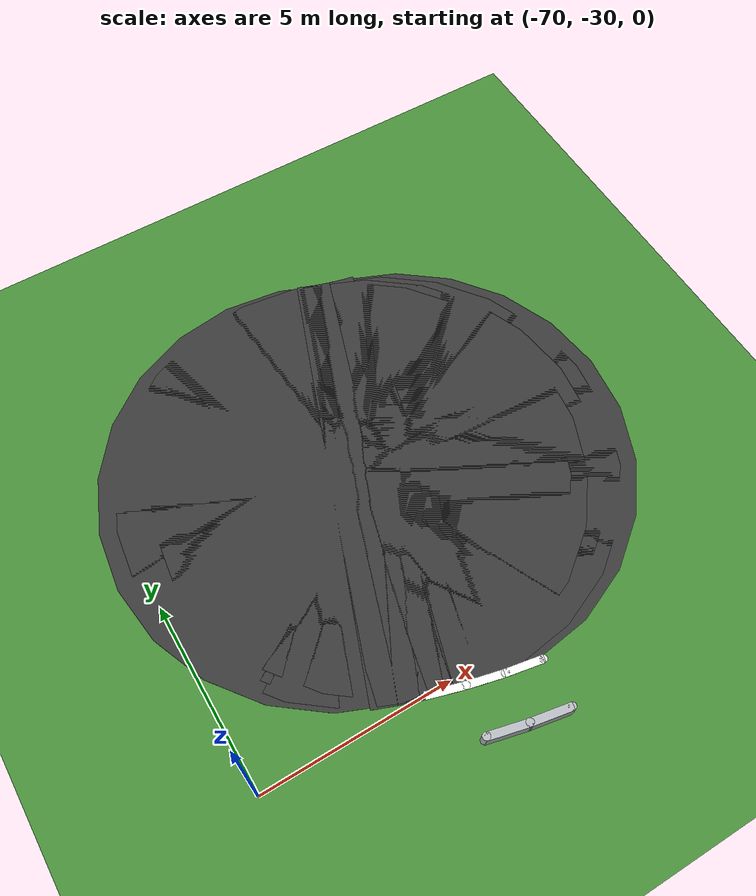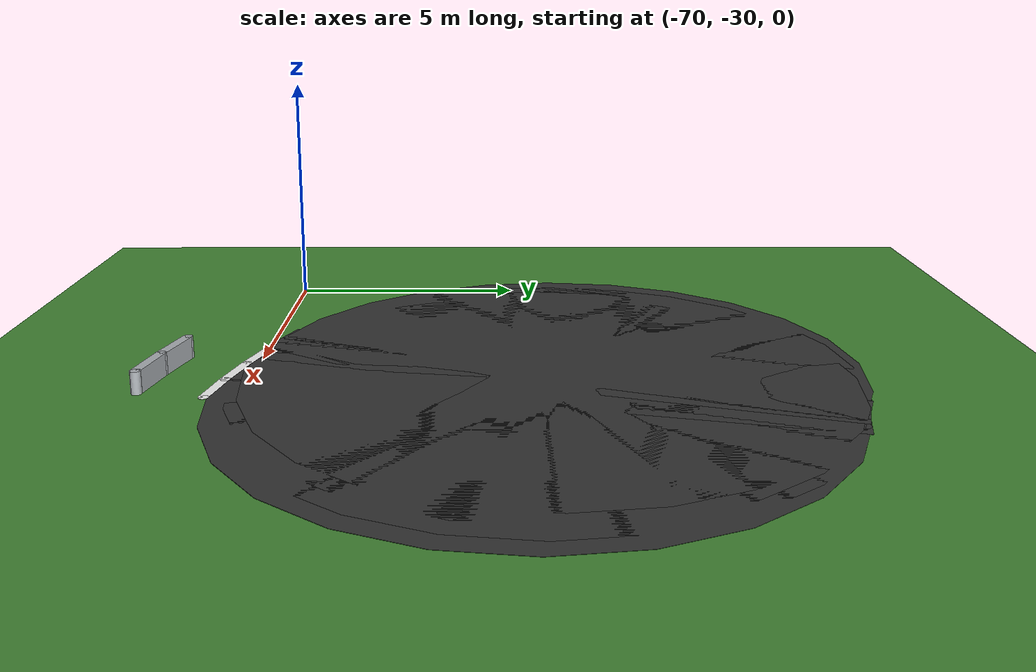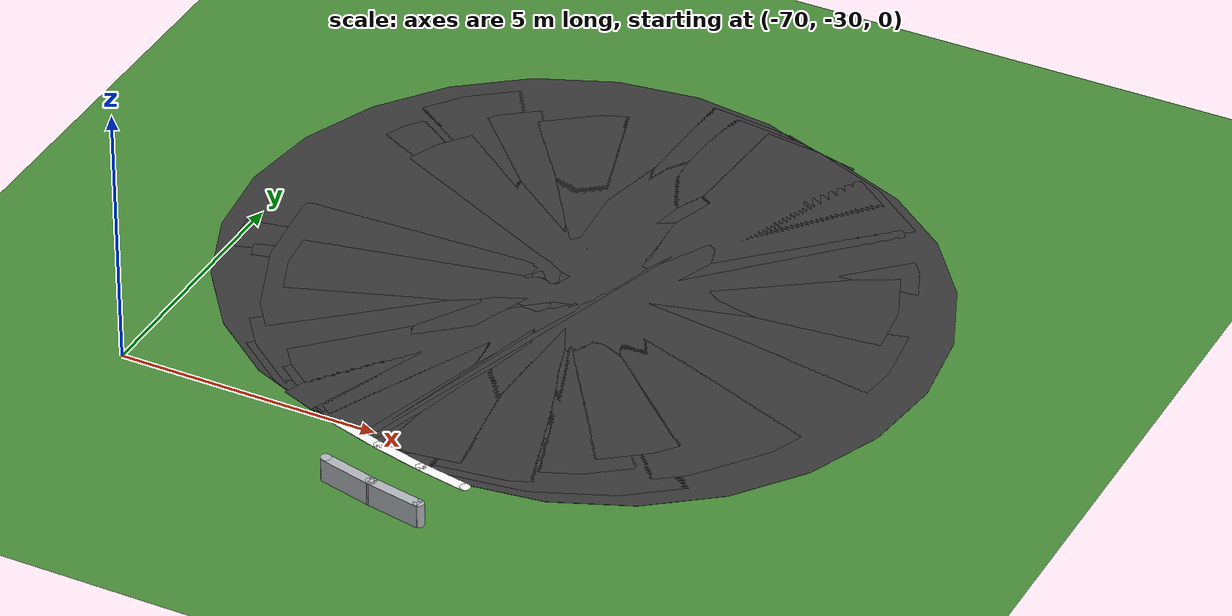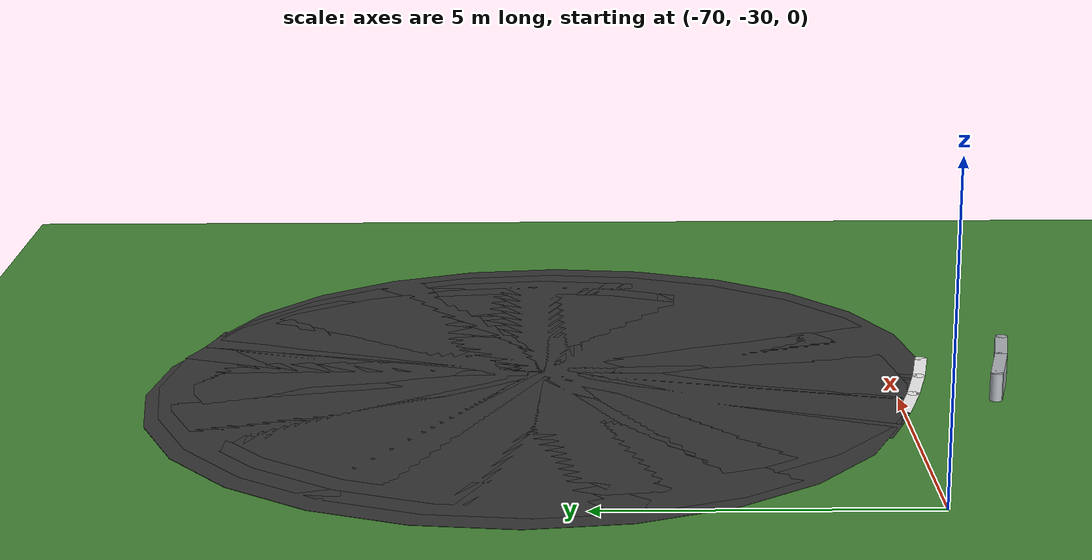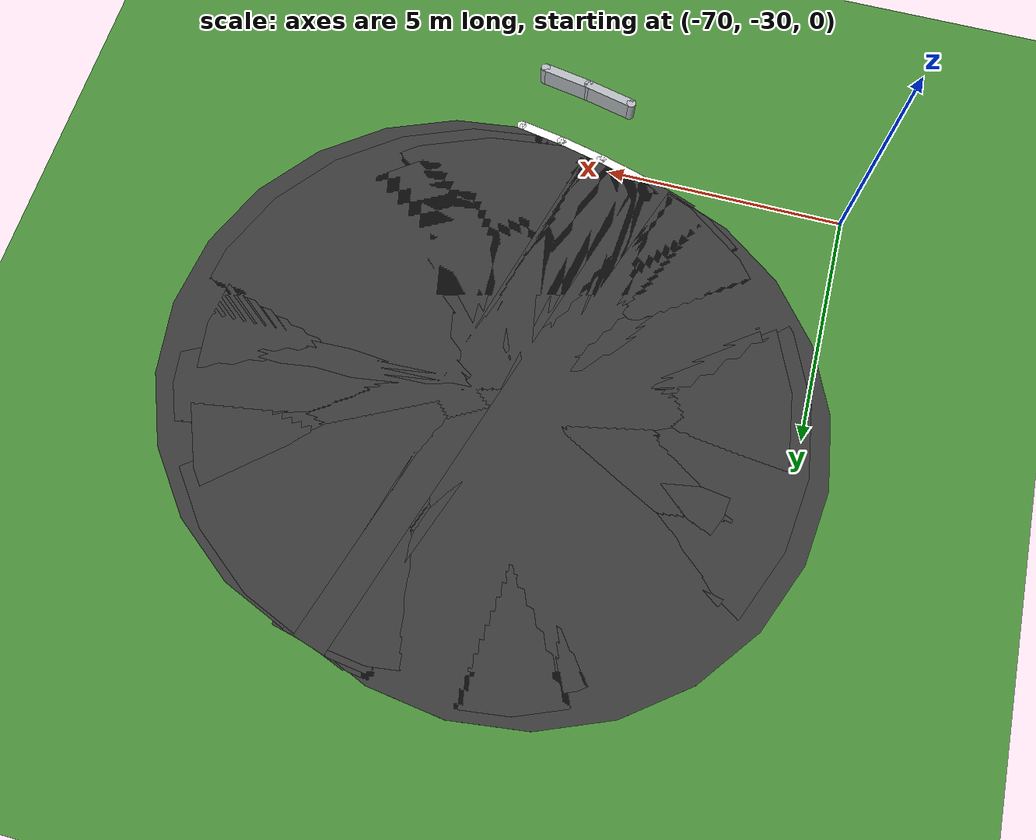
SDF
<sdf version="1.6">
 <world name="sem_silesia_ring_2026">
  <model name="ground_plane">
   <static>true</static>
   <link name="link">
    <collision name="collision">
     <geometry><plane><normal>0 0 1</normal><size>600 600</size></plane></geometry>
     <surface><friction><ode><mu>0.6</mu><mu2>0.6</mu2></ode></friction></surface>
    </collision>
    <visual name="visual">
     <geometry><plane><normal>0 0 1</normal><size>600 600</size></plane></geometry>
     <material><ambient>0.28 0.55 0.22 1</ambient><diffuse>0.28 0.55 0.22 1</diffuse></material>
    </visual>
   </link>
  </model>
  <model name="road_L_jnt79">
   <static>true</static>
   <pose>-64.6826 -24.0898 0.0030 0 0 0</pose>
   <link name="link">
    <visual name="v">
     <geometry><cylinder><radius>6.0000</radius><length>0.0060</length></cylinder></geometry>
     <material><ambient>0.22 0.22 0.22 1</ambient><diffuse>0.22 0.22 0.22 1</diffuse></material>
    </visual>
    <collision name="c">
     <geometry><cylinder><radius>6.0000</radius><length>0.0060</length></cylinder></geometry>
     <surface><friction><ode><mu>0.9</mu><mu2>0.9</mu2></ode></friction></surface>
    </collision>
   </link>
  </model>
  <model name="road_L_s79">
   <static>true</static>
   <pose>-64.4796 -24.1698 0.0030 0 0 5.9167</pose>
   <link name="link">
    <visual name="v">
     <geometry><box><size>0.6957 12.0000 0.0060</size></box></geometry>
     <material><ambient>0.22 0.22 0.22 1</ambient><diffuse>0.22 0.22 0.22 1</diffuse></material>
    </visual>
    <collision name="c">
     <geometry><box><size>0.6957 12.0000 0.0060</size></box></geometry>
     <surface><friction><ode><mu>0.9</mu><mu2>0.9</mu2></ode></friction></surface>
    </collision>
   </link>
  </model>
  <model name="road_L_jnt80">
   <static>true</static>
   <pose>-64.2753 -24.2462 0.0030 0 0 0</pose>
   <link name="link">
    <visual name="v">
     <geometry><cylinder><radius>6.0000</radius><length>0.0060</length></cylinder></geometry>
     <material><ambient>0.22 0.22 0.22 1</ambient><diffuse>0.22 0.22 0.22 1</diffuse></material>
    </visual>
    <collision name="c">
     <geometry><cylinder><radius>6.0000</radius><length>0.0060</length></cylinder></geometry>
     <surface><friction><ode><mu>0.9</mu><mu2>0.9</mu2></ode></friction></surface>
    </collision>
   </link>
  </model>
  <model name="road_L_s80">
   <static>true</static>
   <pose>-64.0696 -24.3190 0.0030 0 0 5.9516</pose>
   <link name="link">
    <visual name="v">
     <geometry><box><size>0.6957 12.0000 0.0060</size></box></geometry>
     <material><ambient>0.22 0.22 0.22 1</ambient><diffuse>0.22 0.22 0.22 1</diffuse></material>
    </visual>
    <collision name="c">
     <geometry><box><size>0.6957 12.0000 0.0060</size></box></geometry>
     <surface><friction><ode><mu>0.9</mu><mu2>0.9</mu2></ode></friction></surface>
    </collision>
   </link>
  </model>
  <model name="road_L_jnt81">
   <static>true</static>
   <pose>-63.8627 -24.3882 0.0030 0 0 0</pose>
   <link name="link">
    <visual name="v">
     <geometry><cylinder><radius>6.0000</radius><length>0.0060</length></cylinder></geometry>
     <material><ambient>0.22 0.22 0.22 1</ambient><diffuse>0.22 0.22 0.22 1</diffuse></material>
    </visual>
    <collision name="c">
     <geometry><cylinder><radius>6.0000</radius><length>0.0060</length></cylinder></geometry>
     <surface><friction><ode><mu>0.9</mu><mu2>0.9</mu2></ode></friction></surface>
    </collision>
   </link>
  </model>
  <model name="road_L_s81">
   <static>true</static>
   <pose>-63.6546 -24.4538 0.0030 0 0 5.9865</pose>
   <link name="link">
    <visual name="v">
     <geometry><box><size>0.6957 12.0000 0.0060</size></box></geometry>
     <material><ambient>0.22 0.22 0.22 1</ambient><diffuse>0.22 0.22 0.22 1</diffuse></material>
    </visual>
    <collision name="c">
     <geometry><box><size>0.6957 12.0000 0.0060</size></box></geometry>
     <surface><friction><ode><mu>0.9</mu><mu2>0.9</mu2></ode></friction></surface>
    </collision>
   </link>
  </model>
  <model name="road_L_jnt82">
   <static>true</static>
   <pose>-63.4455 -24.5158 0.0030 0 0 0</pose>
   <link name="link">
    <visual name="v">
     <geometry><cylinder><radius>6.0000</radius><length>0.0060</length></cylinder></geometry>
     <material><ambient>0.22 0.22 0.22 1</ambient><diffuse>0.22 0.22 0.22 1</diffuse></material>
    </visual>
    <collision name="c">
     <geometry><cylinder><radius>6.0000</radius><length>0.0060</length></cylinder></geometry>
     <surface><friction><ode><mu>0.9</mu><mu2>0.9</mu2></ode></friction></surface>
    </collision>
   </link>
  </model>
  <model name="road_L_s82">
   <static>true</static>
   <pose>-63.2352 -24.5741 0.0030 0 0 6.0214</pose>
   <link name="link">
    <visual name="v">
     <geometry><box><size>0.6957 12.0000 0.0060</size></box></geometry>
     <material><ambient>0.22 0.22 0.22 1</ambient><diffuse>0.22 0.22 0.22 1</diffuse></material>
    </visual>
    <collision name="c">
     <geometry><box><size>0.6957 12.0000 0.0060</size></box></geometry>
     <surface><friction><ode><mu>0.9</mu><mu2>0.9</mu2></ode></friction></surface>
    </collision>
   </link>
  </model>
  <model name="road_L_jnt83">
   <static>true</static>
   <pose>-63.0240 -24.6287 0.0030 0 0 0</pose>
   <link name="link">
    <visual name="v">
     <geometry><cylinder><radius>6.0000</radius><length>0.0060</length></cylinder></geometry>
     <material><ambient>0.22 0.22 0.22 1</ambient><diffuse>0.22 0.22 0.22 1</diffuse></material>
    </visual>
    <collision name="c">
     <geometry><cylinder><radius>6.0000</radius><length>0.0060</length></cylinder></geometry>
     <surface><friction><ode><mu>0.9</mu><mu2>0.9</mu2></ode></friction></surface>
    </collision>
   </link>
  </model>
  <model name="road_L_s83">
   <static>true</static>
   <pose>-62.8119 -24.6796 0.0030 0 0 6.0563</pose>
   <link name="link">
    <visual name="v">
     <geometry><box><size>0.6957 12.0000 0.0060</size></box></geometry>
     <material><ambient>0.22 0.22 0.22 1</ambient><diffuse>0.22 0.22 0.22 1</diffuse></material>
    </visual>
    <collision name="c">
     <geometry><box><size>0.6957 12.0000 0.0060</size></box></geometry>
     <surface><friction><ode><mu>0.9</mu><mu2>0.9</mu2></ode></friction></surface>
    </collision>
   </link>
  </model>
  <model name="wl_Lo_s54">
   <static>true</static>
   <pose>-65.2259 -30.1423 0.0050 0 0 5.9952</pose>
   <link name="link">
    <visual name="v">
     <geometry><box><size>1.0185 0.2000 0.0040</size></box></geometry>
     <material><ambient>1 1 1 1</ambient><diffuse>1 1 1 1</diffuse></material>
    </visual>
    <collision name="c">
     <geometry><box><size>1.0185 0.2000 0.0040</size></box></geometry>
     <surface><friction><ode><mu>0.9</mu><mu2>0.9</mu2></ode></friction></surface>
    </collision>
   </link>
  </model>
  <model name="wl_Lo_jnt55">
   <static>true</static>
   <pose>-64.7623 -30.2730 0.0050 0 0 0</pose>
   <link name="link">
    <visual name="v">
     <geometry><cylinder><radius>0.1000</radius><length>0.0040</length></cylinder></geometry>
     <material><ambient>1 1 1 1</ambient><diffuse>1 1 1 1</diffuse></material>
    </visual>
    <collision name="c">
     <geometry><cylinder><radius>0.1000</radius><length>0.0040</length></cylinder></geometry>
     <surface><friction><ode><mu>0.9</mu><mu2>0.9</mu2></ode></friction></surface>
    </collision>
   </link>
  </model>
  <model name="wl_Lo_s55">
   <static>true</static>
   <pose>-64.2954 -30.3916 0.0050 0 0 6.0476</pose>
   <link name="link">
    <visual name="v">
     <geometry><box><size>1.0185 0.2000 0.0040</size></box></geometry>
     <material><ambient>1 1 1 1</ambient><diffuse>1 1 1 1</diffuse></material>
    </visual>
    <collision name="c">
     <geometry><box><size>1.0185 0.2000 0.0040</size></box></geometry>
     <surface><friction><ode><mu>0.9</mu><mu2>0.9</mu2></ode></friction></surface>
    </collision>
   </link>
  </model>
  <model name="wl_Lo_jnt56">
   <static>true</static>
   <pose>-63.8256 -30.4979 0.0050 0 0 0</pose>
   <link name="link">
    <visual name="v">
     <geometry><cylinder><radius>0.1000</radius><length>0.0040</length></cylinder></geometry>
     <material><ambient>1 1 1 1</ambient><diffuse>1 1 1 1</diffuse></material>
    </visual>
    <collision name="c">
     <geometry><cylinder><radius>0.1000</radius><length>0.0040</length></cylinder></geometry>
     <surface><friction><ode><mu>0.9</mu><mu2>0.9</mu2></ode></friction></surface>
    </collision>
   </link>
  </model>
  <model name="wl_Lo_s56">
   <static>true</static>
   <pose>-63.3531 -30.5919 0.0050 0 0 6.0999</pose>
   <link name="link">
    <visual name="v">
     <geometry><box><size>1.0185 0.2000 0.0040</size></box></geometry>
     <material><ambient>1 1 1 1</ambient><diffuse>1 1 1 1</diffuse></material>
    </visual>
    <collision name="c">
     <geometry><box><size>1.0185 0.2000 0.0040</size></box></geometry>
     <surface><friction><ode><mu>0.9</mu><mu2>0.9</mu2></ode></friction></surface>
    </collision>
   </link>
  </model>
  <model name="wl_Lo_jnt57">
   <static>true</static>
   <pose>-62.8784 -30.6735 0.0050 0 0 0</pose>
   <link name="link">
    <visual name="v">
     <geometry><cylinder><radius>0.1000</radius><length>0.0040</length></cylinder></geometry>
     <material><ambient>1 1 1 1</ambient><diffuse>1 1 1 1</diffuse></material>
    </visual>
    <collision name="c">
     <geometry><cylinder><radius>0.1000</radius><length>0.0040</length></cylinder></geometry>
     <surface><friction><ode><mu>0.9</mu><mu2>0.9</mu2></ode></friction></surface>
    </collision>
   </link>
  </model>
  <model name="arm_Lo_jnt55">
   <static>true</static>
   <pose>-65.0987 -31.5287 0.2250 0 0 0</pose>
   <link name="link">
    <visual name="v">
     <geometry><cylinder><radius>0.1000</radius><length>0.4500</length></cylinder></geometry>
     <material><ambient>0.70 0.72 0.74 1</ambient><diffuse>0.70 0.72 0.74 1</diffuse></material>
    </visual>
    <collision name="c">
     <geometry><cylinder><radius>0.1000</radius><length>0.4500</length></cylinder></geometry>
     <surface><friction><ode><mu>0.9</mu><mu2>0.9</mu2></ode></friction></surface>
    </collision>
   </link>
  </model>
  <model name="arm_Lo_s55">
   <static>true</static>
   <pose>-64.5989 -31.6557 0.2250 0 0 6.0476</pose>
   <link name="link">
    <visual name="v">
     <geometry><box><size>1.0866 0.2000 0.4500</size></box></geometry>
     <material><ambient>0.70 0.72 0.74 1</ambient><diffuse>0.70 0.72 0.74 1</diffuse></material>
    </visual>
    <collision name="c">
     <geometry><box><size>1.0866 0.2000 0.4500</size></box></geometry>
     <surface><friction><ode><mu>0.9</mu><mu2>0.9</mu2></ode></friction></surface>
    </collision>
   </link>
  </model>
  <model name="arm_Lo_jnt56">
   <static>true</static>
   <pose>-64.0959 -31.7695 0.2250 0 0 0</pose>
   <link name="link">
    <visual name="v">
     <geometry><cylinder><radius>0.1000</radius><length>0.4500</length></cylinder></geometry>
     <material><ambient>0.70 0.72 0.74 1</ambient><diffuse>0.70 0.72 0.74 1</diffuse></material>
    </visual>
    <collision name="c">
     <geometry><cylinder><radius>0.1000</radius><length>0.4500</length></cylinder></geometry>
     <surface><friction><ode><mu>0.9</mu><mu2>0.9</mu2></ode></friction></surface>
    </collision>
   </link>
  </model>
  <model name="arm_Lo_s56">
   <static>true</static>
   <pose>-63.5900 -31.8701 0.2250 0 0 6.0999</pose>
   <link name="link">
    <visual name="v">
     <geometry><box><size>1.0866 0.2000 0.4500</size></box></geometry>
     <material><ambient>0.70 0.72 0.74 1</ambient><diffuse>0.70 0.72 0.74 1</diffuse></material>
    </visual>
    <collision name="c">
     <geometry><box><size>1.0866 0.2000 0.4500</size></box></geometry>
     <surface><friction><ode><mu>0.9</mu><mu2>0.9</mu2></ode></friction></surface>
    </collision>
   </link>
  </model>
  <model name="arm_Lo_jnt57">
   <static>true</static>
   <pose>-63.0818 -31.9575 0.2250 0 0 0</pose>
   <link name="link">
    <visual name="v">
     <geometry><cylinder><radius>0.1000</radius><length>0.4500</length></cylinder></geometry>
     <material><ambient>0.70 0.72 0.74 1</ambient><diffuse>0.70 0.72 0.74 1</diffuse></material>
    </visual>
    <collision name="c">
     <geometry><cylinder><radius>0.1000</radius><length>0.4500</length></cylinder></geometry>
     <surface><friction><ode><mu>0.9</mu><mu2>0.9</mu2></ode></friction></surface>
    </collision>
   </link>
  </model>
 </world>
</sdf>
